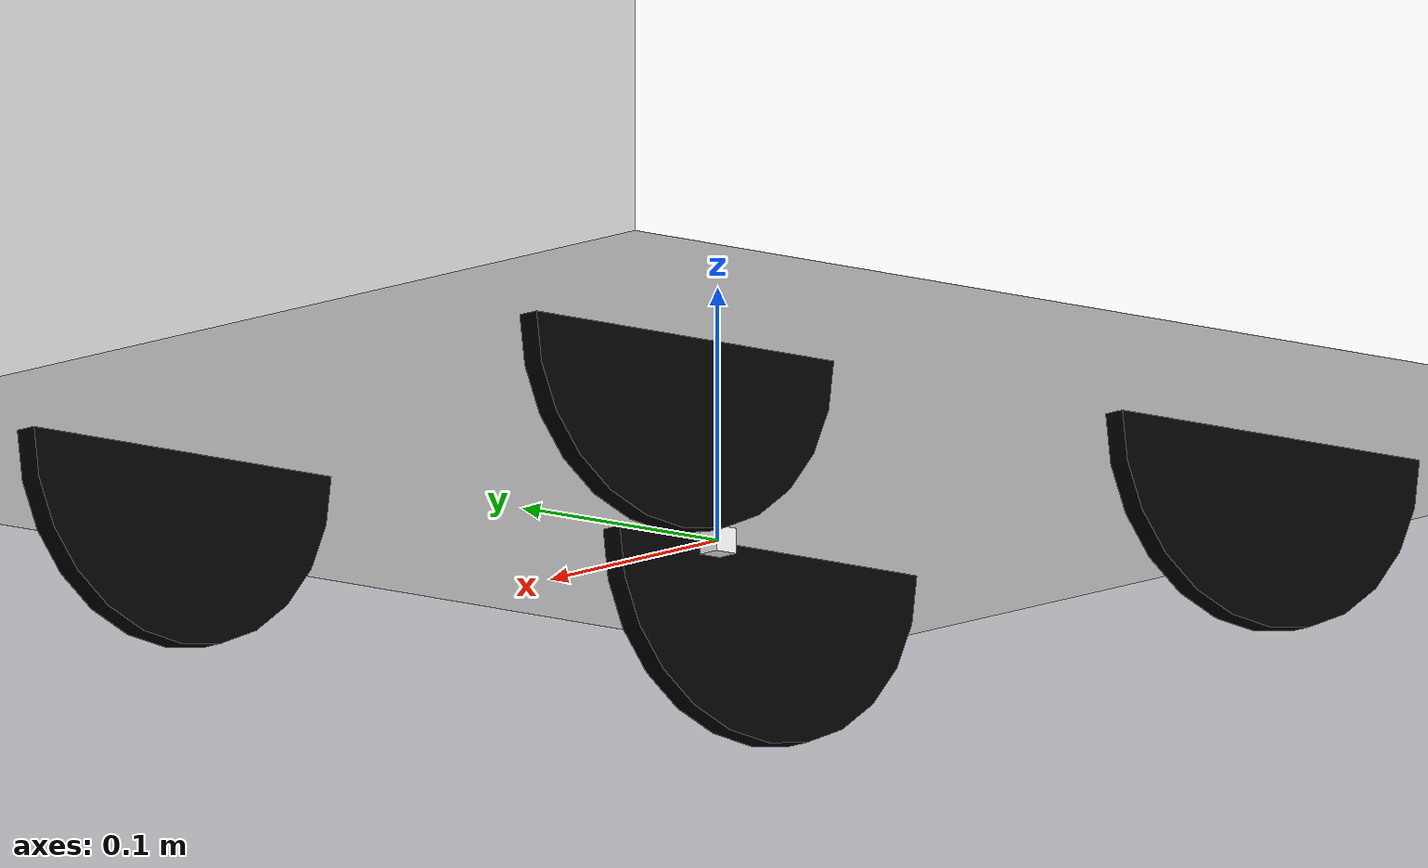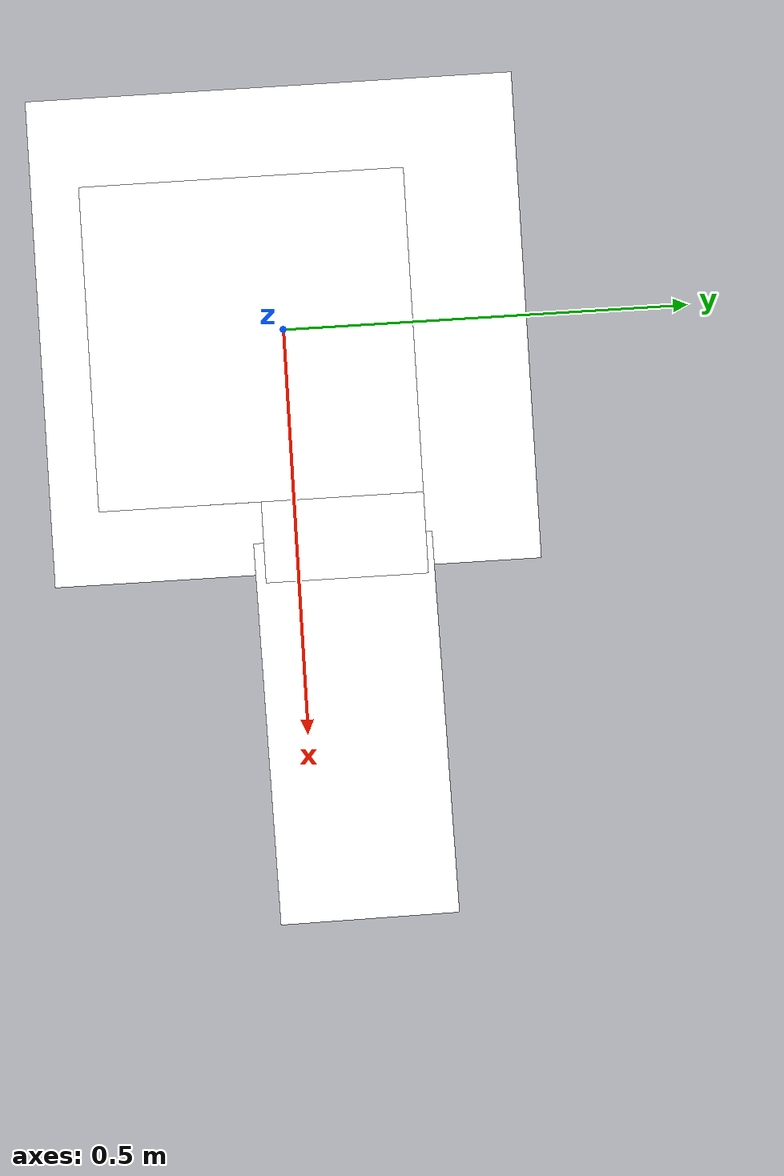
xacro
<?xml version="1.0"?>
<!-- Author: Devon Ash -->
<!-- Maintainer: noobaca2@gmail.com -->
<robot xmlns:sensor="http://playerstage.sourceforge.net/gazebo/xmlschema/#sensor"
       xmlns:controller="http://playerstage.sourceforge.net/gazebo/xmlschema/#controller"
       xmlns:interface="http://playerstage.sourceforge.net/gazebo/xmlschema/#interface"
       xmlns:xacro="http://ros.org/wiki/xacro" name="talos">

<!--                 INCLUDED XACROS               -->

<xacro:include filename="$(find talos_navigation)/talos_description/urdf/torso_v0/talos_torso.urdf.xacro" />
<xacro:include filename="$(find talos_navigation)/talos_description/urdf/upper_arm_v0/talos_upper_arm_v1.urdf.xacro" />
<xacro:include filename="$(find talos_navigation)/talos_description/urdf/base_v0/talos_base.urdf.xacro" />
<xacro:include filename="$(find talos_navigation)/talos_description/urdf/head_v0/talos_head.urdf.xacro" />
<xacro:include filename="$(find talos_navigation)/talos_description/urdf/tilting_laser_v0/talos_tilting_laser.urdf.xacro" />

<!-- Use the macros defined in the xacro above to define actual urdf -->

<!--                 COMMON CONSTANTS              -->

<property name="torso_offset_x" value="0.01" />
<property name="torso_offset_y" value="-0.04" />
<!-- VALUE: Torso height/2 + base height -->
<property name="torso_offset_z" value="0.675" />

<property name="talos_head_offset_x" value="137" />
<property name="talos_head_offset_y" value="-0.01" />
<!-- TODO: Measure proper Z offset for taloshead, and include translations due to pan/tilt -->
<property name="talos_head_offset_z" value="500" />

<!--                 TALOS  DEFINITION             -->

<!-- Creates the talos base and the wheels attached to it -->
<xacro:talos_base name="talos" />

<!-- Creates the talos torso -->
<xacro:talos_torso name="torso" parent="talos_base_link">
	<origin xyz="${torso_offset_x} ${torso_offset_y} ${torso_offset_z}" rpy="0 0 0"/>
</xacro:talos_torso>

<!-- Instantiates the upper arm of talos -->
<xacro:talos_upper_arm side="left" parent="torso_link" reflect="1" />

<!-- Instantiates talos head -->
<xacro:talos_head parent="torso_link">
	<origin xyz="${talos_head_offset_x} ${talos_head_offset_y} ${talos_head_offset_z}" rpy="0 0 0" />
</xacro:talos_head>

<!-- Instantiates the base laser -->

</robot>

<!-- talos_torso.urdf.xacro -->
<!-- Author: Devon Ash -->
<!-- Maintainer: noobaca2@gmail.com -->
<robot xmlns:sensor="http://playerstage.sourceforge.net/gazebo/xmlschema/#sensor"
       xmlns:controller="http://playerstage.sourceforge.net/gazebo/xmlschema/#controller"
       xmlns:interface="http://playerstage.sourceforge.net/gazebo/xmlschema/#interface"
       xmlns:xacro="http://ros.org/wiki/xacro">

<!--                 TORSO CONSTANTS               -->

<!-- TODO: Set proper values for the torso efforts and vels -->
<property name="max_torso_effort" value="10" />
<property name="max_torso_velocity" value="10" />
<property name="torso_friction" value="0" />
<property name="torso_damping" value="0" />
<property name="max_torso_velocity" value="10" />
<property name="torso_safety_k_velocity" value="10"/>
<property name="torso_mass" value="10" />
<!-- END TODO -->

<property name="talos_torso_width" value="0.4" />
<property name="talos_torso_length" value="0.4" />
<property name="talos_torso_height" value="1.0" />

<!--                TORSO DEFINITION               -->

<xacro:macro name="talos_torso" params="name parent *origin">
<joint name="${name}_rotating_joint" type="continuous">
	<axis xyz="0 0 1" />
	<parent link="${parent}"/>
	<child link="${name}_link"/>
        <xacro:insert_block name="origin" />
       <!-- TODO: Set appropriate values for these -->
	<limit effort="${max_torso_effort}" velocity="${max_wheel_velocity}"/> <!-- alpha tested effort and velocity limits -->

       <!-- TODO: Set appropriate values for these -->
	<safety_controller k_velocity="${safety_k_velocity}" />
	<dynamics damping="${torso_damping}" friction="${torso_friction}" />
</joint>

<link name="${name}_link">

<!-- TODO: Set appropriate values for these -->
      <visual>
        <origin xyz="0 0 0" rpy="0 0 0" />
	 <!-- TODO: Add the correct .dae path for geometry -->

	<!-- Temporary, because we will be using the .dae -->
	<geometry>
		<box size="${talos_torso_length}  ${talos_torso_width} ${talos_torso_height}"/>
	</geometry>
	<material name="white">
		<color rgba="1 1 1 1"/>
	</material>

	</visual>

</link>

</xacro:macro>

</robot>

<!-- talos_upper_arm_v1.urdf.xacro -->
<!-- Author: Devon Ash -->
<!-- Maintainer: noobaca2@gmail.com -->

<!-- XML namespaces -->
<robot xmlns:sensor="http://playerstage.sourceforge.net/gazebo/xmlschema/#sensor"
       xmlns:controller="http://playerstage.sourceforge.net/gazebo/xmlschema/#controller"
       xmlns:interface="http://playerstage.sourceforge.net/gazebo/xmlschema/#interface"
       xmlns:xacro="http://ros.org/wiki/xacro" name="talos">

 <!-- Things that are needed only for Gazebo (not the physical robot). These include
sensor and controller plugin specifications -->

<!--                 ARM CONSTANTS                 -->

<property name="shoulder_mass" value="10" />
<property name="shoulder_height" value="0.22" />
<property name="shoulder_width" value="0.1" />
<property name="shoulder_length" value="0.2" />
<property name="upper_arm_width" value="0.2"/>
<property name="upper_arm_height" value="0.22"/>
<property name="upper_arm_length" value="0.47" />

<!-- TODO: Proper values for these variables -->
<property name="shoulder_joint_lower_angle_bound" value="-1.56" />
<property name="shoulder_joint_upper_angle_bound" value="1.56" />
<property name="shoulder_joint_max_effort" value="10" />
<property name="shoulder_joint_max_velocity" value="10" />
<property name="shoulder_joint_calibration_falling" value="0" />
<property name="shoulder_joint_damping" value="0" />

<xacro:macro name="talos_upper_arm" params="side parent reflect">

<joint name="${side}_shoulder_joint" type="fixed">
	<!-- TODO: Add proper values for xyz -->
	<!-- Note: Crude approximation of physical robot -->
  	<parent link="${parent}"/>
	<child link="${side}_shoulder_link"/>
	<origin rpy="0 0 1.57" xyz="0.25 0.1 0.39"/>
</joint>

<link name="${side}_shoulder_link">
	<!-- TODO: Jordan start -->
	<!-- TODO Jordan: Please fill in the required values specified by "0" or near approximations -->
	<inertial>
		<mass value="${shoulder_mass}" />
		<origin xyz="0 0 0" />
		<inertia ixx="0" ixy="0" ixz="0"
			  iyy="0" iyz="0"
			  izz="0" />
	</inertial>
        <!-- TODO: Jordan end -->

        <!-- TODO: Someone? Not sure how these are done yet. -->

	<visual>

		<geometry>
			<box size="${shoulder_length} ${shoulder_width} ${shoulder_height}" />
		</geometry>
		<origin rpy="0 0 0" xyz="0 0 0"/>
		<!-- TODO: Add meshes -->
		<!-- TODO: Add .dae material file -->
		<material name="white">
			<color rgba="1 1 1 1"/>
		</material>
	</visual>
</link>

<joint name="${side}_shoulder_to_upper_${side}_arm_joint" type="revolute">

        <!-- Note: Crude approximation of the joint, this is not the exact connecting joint location -->
  	<parent link="${side}_shoulder_link"/>
	<child link="${side}_upper_arm_link"/>
	<origin rpy="1.57 0 0" xyz="0 -0.235 0"/>

	<!-- Note: Code template taken from PR2_upper_arm.urdf for templating -->
	<!-- Doc: axis of revolution -->
	<!-- TODO Jordan Start -->
	<!-- TODO Jordan: Please fill in the required values specified by "0" or near approximations -->
	<axis xyz="0 1 0" />
	<!-- TODO Jordan: lower rotation degree w.r.t specified axis, same thing for upper. Effort is max force in newtons. Velocity is max velocity of joint. -->
	<limit lower="${shoulder_joint_lower_angle_bound}" upper="${shoulder_joint_lower_angle_bound}" effort="${shoulder_joint_max_effort}" velocity="${shoulder_joint_max_velocity}" />

        <!-- Note: PR2 Has safety controller, not sure what it's for yet or what the values do-->

        <!-- Note: Jordan, do you know what this could be? -->
	<calibration falling="${shoulder_joint_calibration_falling}"/>

        <!-- TODO: Jordan -->
	<dynamics damping="${shoulder_joint_damping}" />
        <!-- TODO: Jordan end -->

</joint>

<link name="${side}_upper_arm_link">

	<!-- TODO: Jordan start -->
	<!-- TODO Jordan: Please fill in the required values specified by "0" or near approximations -->
	<inertial>
		<mass value="0" />
		<origin xyz="0 0 0" />
		<inertia ixx="0" ixy="0" ixz="0"
			  iyy="0" iyz="0"
			  izz="0" />
	</inertial>
        <!-- TODO: Jordan end -->

        <!-- TODO: Someone? Not sure how these are done yet. -->

	<visual>
		<geometry>
			<box size="${upper_arm_length} ${upper_arm_width} ${upper_arm_height}"/>
		</geometry>
		<origin rpy="0 0 0" xyz="0 0 0"/>

		<!-- TODO: Add meshes -->
		<!-- TODO: Add .dae file for material mesh -->
		<material name="white">
			<color rgba="1 1 1 1"/>
		</material>
	</visual>

</link>

</xacro:macro>

</robot>

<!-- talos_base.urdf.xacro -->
<!-- Author: Devon Ash -->
<!-- Maintainer: noobaca2@gmail.com -->

<!-- TODO: Smoke Test this file in gazebo and RVIZ! -->
<robot xmlns:sensor="http://playerstage.sourceforge.net/gazebo/xmlschema/#sensor"
       xmlns:controller="http://playerstage.sourceforge.net/gazebo/xmlschema/#controller"
       xmlns:interface="http://playerstage.sourceforge.net/gazebo/xmlschema/#interface"
       xmlns:xacro="http://ros.org/wiki/xacro">

<!-- CONSTANT DEFINITIONS -->

<!--               GENERAL CONSTANTS               -->

<property name="M_PI" value="3.1415926535897931"/>

<!--               WHEEL CONSTANTS                 -->

<property name="wheel_thickness" value="0.01"/>
<property name="wheel_radius" value="0.0761"/>
<property name="wheel_damping" value="1.0" />
<property name="wheel_friction" value="0.0" />
<property name="safety_k_velocity" value="10" />
<property name="max_wheel_effort" value="7" />
<property name="max_wheel_velocity" value="15" />

<!--                 BASE CONSTANTS                -->

<!-- TODO: Accurate and precise values or approximations to be filled in -->

<property name="talos_base_mass" value="0" />
<property name="talos_base_cg_x" value="0" />
<property name="talos_base_cg_y" value="0" />
<property name="talos_base_cg_z" value="0" />
<property name="talos_base_collision_size_z" value="0" />

<property name="talos_base_width" value="0.60" />
<property name="talos_base_height" value="0.30" />
<property name="talos_base_length" value="0.60" />

<!-- Half of wheel height + half of base height -->
<property name="talos_base_z" value="${(wheel_radius/2)+(talos_base_height)/2}"/>

<!--                WHEEL DEFINITION               -->

<xacro:macro name="talos_wheel" params="suffix parent reflect_side reflect_back">

<joint name="${parent}_${suffix}_wheel_joint" type="continuous">
	<parent link="${parent}"/>
	<child link="${parent}_${suffix}_wheel_link"/>
	<origin rpy="0 1.57 0" xyz="${reflect_side*0.15} ${reflect_back*0.15} -0.15"/>
	<axis xyz="0 1 0" />
       <limit effort="${max_wheel_effort}" velocity="${max_wheel_velocity}"/> <!-- alpha tested effort and velocity limits -->
       <safety_controller k_velocity="${safety_k_velocity}" />
       <dynamics damping="${wheel_damping}" friction="${wheel_friction}" />
</joint>

<link name="${parent}_${suffix}_wheel_link">
	<visual>
		<geometry>
			<cylinder length="${wheel_thickness}" radius="${wheel_radius}"/>
		</geometry>
	<!-- TODO: Add correct meshes for wheels -->
		<origin rpy="0 0 0" xyz="0 0 0"/>
		<material name="black">
			<color rgba="0 0 0 1"/>
		</material>
	<!-- TODO: Add correct collision values or close approximations -->
	</visual>
	<!-- TODO: Jordan, please initialize these to correct approximations -->
</link>
 <!-- TODO: Add proper extensions and transmissions for talos -->
 <!-- extensions -->
</xacro:macro>

<!--                       Base Definition                 -->
<!--                       Base Definition                 -->
<!--                       Base Definition                 -->

<xacro:macro name="talos_base" params="name">

<link name="talos_base_link">

  	<visual>
              <!-- TODO: Replace with .dae file -->
		<geometry>
			<box size="${talos_base_width} ${talos_base_length} ${talos_base_height}"/>
		</geometry>

		<origin rpy="0 0 0" xyz="0 0 0"/>

              <!-- TODO: Replace with .stl file -->
		<material name="white">
			<color rgba="1 1 1 1"/>
		</material>
	</visual>

</link>

<!-- talos_base_footprint is a fictitious link(frame) that is on the ground right below base_link origin,
navigation stack dedpends on this frame -->
<link name="${name}_base_footprint">
      <inertial>
        <mass value="1.0" />
        <origin xyz="0 0 0" />
        <inertia ixx="0.01" ixy="0.0" ixz="0.0"
                 iyy="0.01" iyz="0.0" izz="0.01" />
      </inertial>
      <visual>
        <origin xyz="0 0 0" rpy="0 0 0" />
        <geometry>
          <box size="0.01 0.01 0.01" />
        </geometry>

        <material name="White" />
      </visual>
      <collision>
        <!--represent base collision with a simple rectangular model, positioned by base_size_z s.t. top
surface of the collision box matches the top surface of the PR2 base -->
        <origin xyz="0 0 ${0.051+talos_base_collision_size_z/2}" rpy="0 0 0" />
        <geometry>
          <box size="0.001 0.001 0.001" />
        </geometry>
      </collision>
    </link>

    <joint name="${name}_base_footprint_joint" type="fixed">
      <origin xyz="0 0 ${talos_base_z}" rpy="0 0 0" />
      <child link="talos_base_link" />
      <parent link="${name}_base_footprint"/>
    </joint>

 <!-- Adding TALOS wheels to the base -->
<xacro:talos_wheel suffix="fl" parent="talos_base_link" reflect_side="1" reflect_back="1"/>
<xacro:talos_wheel suffix="fr" parent="talos_base_link" reflect_side="-1" reflect_back="1"/>
<xacro:talos_wheel suffix="bl" parent="talos_base_link" reflect_side="1" reflect_back="-1"/>
<xacro:talos_wheel suffix="br" parent="talos_base_link" reflect_side="-1" reflect_back="-1"/>

</xacro:macro>

</robot>

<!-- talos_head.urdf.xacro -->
<!-- Author: Devon Ash -->
<!-- Maintainer: noobaca2@gmail.com -->

<!-- TODO: Smoke Test this file in gazebo and RVIZ! -->
<robot xmlns:sensor="http://playerstage.sourceforge.net/gazebo/xmlschema/#sensor"
       xmlns:controller="http://playerstage.sourceforge.net/gazebo/xmlschema/#controller"
       xmlns:interface="http://playerstage.sourceforge.net/gazebo/xmlschema/#interface"
       xmlns:xacro="http://ros.org/wiki/xacro" name="talos_head">

<!--               GENERAL CONSTANTS               -->

<property name="M_PI" value="3.1415926535897931"/>

<!-- TODO: Set proper values for the constants defined below -->
<!-- TODO: Head_pan_joint variables -->
<property name="max_head_pan_effort" value="10" />
<property name="max_head_pan_velocity" value="10" />
<property name="head_pan_safety_k_velocity" value="10" />
<property name="head_pan_damping" value="10" />
<property name="head_pan_frictoin" value="10" />

<!-- TODO: Set head_pan_link variables -->
<property name="head_pan_link_mass" value="3" />

<!-- TODO: Set head_tilt joint variables -->
<property name="head_tilt_min_angle" value="-1" />
<property name="head_tilt_max_angle" value="1" />
<property name="head_tilt_max_vel" value="10" />
<property name="head_tilt_max_effort" value="10" />
<property name="head_tilt_safety_k_velocity" value="10" />
<property name="head_tilt_damping" value="10" />
<property name="head_tilt_link_mass" value="10" />

<!--               TALOS_HEAD_PAN                  -->

<xacro:macro name="talos_head_pan" params="name parent *origin">

<joint name="${name}_joint" type="continuous">
	<parent link="${parent}"/>
	<child link="${name}_link"/>
	<xacro:insert_block name="origin"/>
	<axis xyz="0 0 1" />
       <limit effort="${max_head_pan_effort}" velocity="${max_head_pan_velocity}" />
	<!-- TODO: Not sure what this is -->
	<!-- TODO: set proper values first -->
</joint>

<link name="${name}_link">

	<!-- TODO: Fill in constants above related to inertia -->

      <visual>
        <origin xyz="0 0 0.0" rpy="0 0 0 " />
	<!-- TODO: Insert proper .dae file for the visual mesh -->
	<!-- TODO: Approximation -->
        <geometry>
		<box size="0 0 0" />
	</geometry>

        <material name="Blue" />
      </visual>

	<!-- TODO: Insert the proper .stl file for collisions -->

</link>
<!-- extensions -->
</xacro:macro>

<!--               TALOS_HEAD_TILT                 -->

<xacro:macro name="talos_head_tilt" params="name parent *origin">

<joint name="${name}_joint" type="revolute">
      <axis xyz="0 1 0" />

      <!-- TODO: Set proper values for the lower, upper, vel, and effort. They are fudge values atm -->
      <limit lower="${head_tilt_min_angle}" upper="${head_tilt_max_angle}" effort="${head_tilt_max_effort}" velocity="${head_tilt_max_vel}" />

      <safety_controller k_velocity="${head_tilt_safety_k_velocity}" soft_lower_limit="${-0.4712 + 0.1}" soft_upper_limit="${1.39626 - 0.1}" k_position="100" />

      <!-- TODO: What is calibration for? -->
      <dynamics damping="${head_tilt_damping}" />
      <insert_block name="origin" />
      <parent link="${parent}"/>
      <child link="${name}_link"/>

</joint>

 <link name="${name}_link">

      <visual>
        <origin xyz="0 0 0" rpy="0.0 0.0 0.0" />

	<geometry>
		<!-- TODO: Proper values, these are fudged for sake of parsing -->
		<box size="0.1 0.1 0.1" />
	</geometry>

        <material name="Green" />
      </visual>

    </link>

<!-- extensions -->
<!-- TODO: Add transmissions -->

</xacro:macro>

<!--            TALOS HEAD INSTANTIATION           -->

<!-- Instantiate the head of talos -->
<xacro:macro name="talos_head" params="parent *origin">

	<!-- Instantiate the head_pan of talos -->
	<xacro:talos_head_pan name="head_pan" parent="${parent}">
		<xacro:insert_block name="origin" />
	</xacro:talos_head_pan>

	<!-- Instantiate the head tilt of talos -->
	<xacro:talos_head_tilt name="head_tilt" parent="head_pan_link">
		<!-- TODO: Proper positioning of tilt mechanism -->
		<origin xyz="0 0 0" rpy="0 0 0" />
	</xacro:talos_head_tilt>

</xacro:macro>

</robot>

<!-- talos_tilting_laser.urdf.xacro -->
<!-- Author: Devon Ash -->
<!-- Maintainer: noobaca2@gmail.com -->

<!-- TODO: Smoke Test this file in gazebo and RVIZ! -->
<robot xmlns:sensor="http://playerstage.sourceforge.net/gazebo/xmlschema/#sensor"
       xmlns:controller="http://playerstage.sourceforge.net/gazebo/xmlschema/#controller"
       xmlns:interface="http://playerstage.sourceforge.net/gazebo/xmlschema/#interface"
       xmlns:xacro="http://ros.org/wiki/xacro" name="talos_tilting_laser">

<xacro:include filename="$(find talos_navigation)/talos_description/urdf/sensors/hokuyo_lx30_laser.urdf.xacro" />

<!--               GENERAL CONSTANTS               -->
<property name="talos_base_laser_x" value="0" />
<property name="talos_base_laser_y" value="0.15" />
<property name="talos_base_laser_z" value="0" />

<property name="M_PI" value="3.1415926535897931"/>

<!-- End of hack -->

<!-- base laser -->
    <xacro:hokuyo_lx30_laser_v0 name="talos_base_laser" parent="talos_base" ros_topic="scan" update_rate="20" min_angle="-2.2689" max_angle="2.2689" >
      <origin xyz="${talos_base_laser_x} ${talos_base_laser_y} ${talos_base_laser_z}" rpy="0 0 0" />
    </xacro:hokuyo_lx30_laser_v0>

<joint name="talos_base_laser_simulator_joint" type="fixed">
    <origin xyz="0 0 0" rpy="0 0 0" />
    <parent link="talos_base_laser_link" />
    <child link="talos_base_laser_simulator_link"/>
  </joint>

<!-- This allows us to see it in rviz/gazebo -->
<link name="talos_base_laser_simulator_link">
    <inertial>
      <mass value="0.01" />
      <origin xyz="0 0 0" />
      <inertia ixx="0.001"  ixy="0.0"  ixz="0.0"
               iyy="0.001"  iyz="0.0"
               izz="0.001" />
    </inertial>
    <visual>
      <origin xyz="0 0 0" rpy="0 0 0"/>
      <geometry>
        <box size="0.05 0.05 0.1" />
      </geometry>
    </visual>
    <collision>
      <origin xyz="0 0 0" rpy="0 0 0"/>
      <geometry>
        <box size="0.05 0.05 0.1" />
      </geometry>
    </collision>
  </link>

</robot>

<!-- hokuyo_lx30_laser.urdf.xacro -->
<!-- Copy and paster: Devon Ash -->
<!-- Copied from pr2_description/sensors/ -->

<robot xmlns:sensor="http://playerstage.sourceforge.net/gazebo/xmlschema/#sensor"
       xmlns:controller="http://playerstage.sourceforge.net/gazebo/xmlschema/#controller"
       xmlns:interface="http://playerstage.sourceforge.net/gazebo/xmlschema/#interface"
       xmlns:xacro="http://ros.org/wiki/xacro">

  <xacro:include filename="$(find pr2_description)/urdf/sensors/hokuyo_lx30_laser.gazebo.xacro" />

  <xacro:macro name="hokuyo_lx30_laser_v0" params="name parent *origin ros_topic update_rate min_angle max_angle">
    <joint name="${name}_joint" type="fixed">
      <axis xyz="0 1 0" />
      <insert_block name="origin" />
      <parent link="${parent}_link"/>
      <child link="${name}_link"/>
    </joint>
    <link name="${name}_link" type="laser">
      <inertial>
        <mass value="0.001" />
        <origin xyz="0 0 0" rpy="0 0 0" />
        <inertia ixx="0.0001" ixy="0" ixz="0" iyy="0.000001" iyz="0" izz="0.0001" />
      </inertial>
    </link>
    <!-- gazebo extensions -->
    <xacro:hokuyo_lx30_laser_gazebo_v0 name="${name}" ros_topic="${ros_topic}" update_rate="${update_rate}" min_angle="${min_angle}" max_angle="${max_angle}" />
  </xacro:macro>
</robot>
